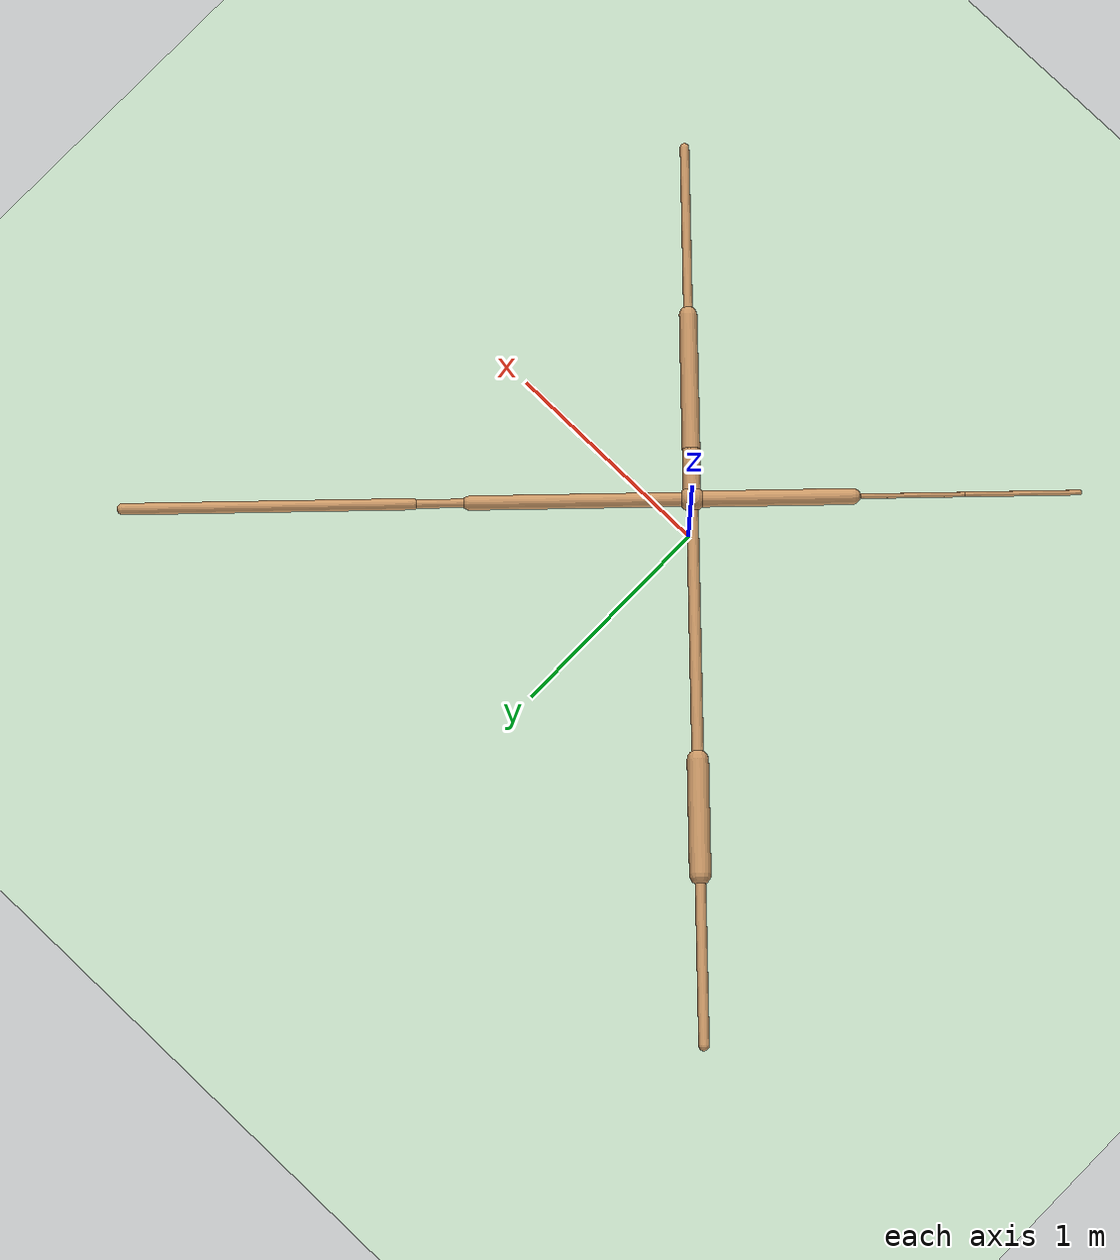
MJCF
<mujoco model="ant">
  <compiler angle="degree" coordinate="local" inertiafromgeom="true" />
  <option integrator="RK4" timestep="0.01" />
  <custom>
    <numeric data="0.0 0.0 0.55 1.0 0.0 0.0 0.0 0.0 1.0 0.0 -1.0 0.0 -1.0 0.0 1.0" name="init_qpos" />
  </custom>
  <default>
    <joint armature="1" damping="1" limited="true" />
    <geom conaffinity="0" condim="3" density="5.0" friction="1 0.5 0.5" margin="0.01" rgba="0.8 0.6 0.4 1" />
  </default>
  <asset>
    <texture builtin="gradient" height="100" rgb1="1 1 1" rgb2="0 0 0" type="skybox" width="100" />
    <texture builtin="flat" height="1278" mark="cross" markrgb="1 1 1" name="texgeom" random="0.01" rgb1="0.8 0.6 0.4" rgb2="0.8 0.6 0.4" type="cube" width="127" />
    <texture builtin="checker" height="100" name="texplane" rgb1="0 0 0" rgb2="0.8 0.8 0.8" type="2d" width="100" />
    <material name="MatPlane" reflectance="0.5" shininess="1" specular="1" texrepeat="60 60" texture="texplane" />
    <material name="geom" texture="texgeom" texuniform="true" />
  </asset>
  <worldbody>
    <light cutoff="100" diffuse="1 1 1" dir="-0 0 -1.3" directional="true" exponent="1" pos="0 0 1.3" specular=".1 .1 .1" />
    <geom conaffinity="1" condim="3" material="MatPlane" name="floor" pos="0 0 0" rgba="0.8 0.9 0.8 1" size="40 40 40" type="plane" />
    <body name="torso" pos="0 0 0.75">
      <camera name="track" mode="trackcom" pos="0 -11 5" xyaxes="1 0 0 0 0.5 1" />
      <geom name="torso_geom" pos="0 0 0" size="0.05596213787794113" type="sphere" />
      <joint armature="0" damping="0" limited="false" margin="0.01" name="root" pos="0 0 0" type="free" />
      <body name="front_left_leg" pos="0 0 0">
        <geom fromto="0 0 0 0.6737385988235474 0.6737385988235474 0" name="aux_1_geom" size="0.030981114134192467" type="capsule" />
        <body name="aux_1" pos="0.6737385988235474 0.6737385988235474 0">
          <joint axis="0 0 1" name="hip_1" pos="0.0 0.0 0.0" range="-30 30" type="hinge" />
          <geom fromto="0 0 0 0.16974657773971558 0.16974657773971558 0" name="left_leg_geom" size="0.018679991364479065" type="capsule" />
          <body name="left_leg_geom_aux" pos="0.16974657773971558 0.16974657773971558 0">
            <joint axis="-1 1 0" name="ankle_1" pos="0.0 0.0 0.0" range="30 70" type="hinge" />
            <geom fromto="0 0 0 0.8771092891693115 0.8771092891693115 0" name="left_ankle_geom" size="0.024553461000323296" type="capsule" />
          </body>
        </body>
      </body>
      <body name="front_right_leg" pos="0 0 0">
        <geom fromto="0 0 0 -0.8007215261459351 0.8007215261459351 0" name="aux_2_geom" size="0.025733670219779015" type="capsule" />
        <body name="aux_2" pos="-0.8007215261459351 0.8007215261459351 0">
          <joint axis="0 0 1" name="hip_2" pos="0.0 0.0 0.0" range="-30 30" type="hinge" />
          <geom fromto="0 0 0 -0.34596458077430725 0.34596458077430725 0" name="right_leg_geom" size="0.046822793781757355" type="capsule" />
          <body name="right_leg_geom_aux" pos="-0.34596458077430725 0.34596458077430725 0">
            <joint axis="1 1 0" name="ankle_2" pos="0.0 0.0 0.0" range="-70 -30" type="hinge" />
            <geom fromto="0 0 0 -0.5127055644989014 0.5127055644989014 0" name="right_ankle_geom" size="0.023059705272316933" type="capsule" />
          </body>
        </body>
      </body>
      <body name="back_leg" pos="0 0 0">
        <geom fromto="0 0 0 -0.48527389764785767 -0.48527389764785767 0" name="aux_3_geom" size="0.03470773249864578" type="capsule" />
        <body name="aux_3" pos="-0.48527389764785767 -0.48527389764785767 0">
          <joint axis="0 0 1" name="hip_3" pos="0.0 0.0 0.0" range="-30 30" type="hinge" />
          <geom fromto="0 0 0 -0.3407505750656128 -0.3407505750656128 0" name="back_leg_geom" size="0.01046302542090416" type="capsule" />
          <body name="back_leg_geom_aux" pos="-0.3407505750656128 -0.3407505750656128 0">
            <joint axis="-1 1 0" name="ankle_3" pos="0.0 0.0 0.0" range="-70 -30" type="hinge" />
            <geom fromto="0 0 0 -0.345126211643219 -0.345126211643219 0" name="third_ankle_geom" size="0.010788265615701675" type="capsule" />
          </body>
        </body>
      </body>
      <body name="right_back_leg" pos="0 0 0">
        <geom fromto="0 0 0 0.15677861869335175 -0.15677861869335175 0" name="aux_4_geom" size="0.038542892783880234" type="capsule" />
        <body name="aux_4" pos="0.15677861869335175 -0.15677861869335175 0">
          <joint axis="0 0 1" name="hip_4" pos="0.0 0.0 0.0" range="-30 30" type="hinge" />
          <geom fromto="0 0 0 0.41726288199424744 -0.41726288199424744 0" name="rightback_leg_geom" size="0.039109498262405396" type="capsule" />
          <body name="rightback_leg_geom_aux" pos="0.41726288199424744 -0.41726288199424744 0">
            <joint axis="1 1 0" name="ankle_4" pos="0.0 0.0 0.0" range="30 70" type="hinge" />
            <geom fromto="0 0 0 0.5283375978469849 -0.5283375978469849 0" name="fourth_ankle_geom" size="0.019802263006567955" type="capsule" />
          </body>
        </body>
      </body>
    </body>
  </worldbody>
  <actuator>
    <motor ctrllimited="true" ctrlrange="-1.0 1.0" joint="hip_4" gear="150" />
    <motor ctrllimited="true" ctrlrange="-1.0 1.0" joint="ankle_4" gear="150" />
    <motor ctrllimited="true" ctrlrange="-1.0 1.0" joint="hip_1" gear="150" />
    <motor ctrllimited="true" ctrlrange="-1.0 1.0" joint="ankle_1" gear="150" />
    <motor ctrllimited="true" ctrlrange="-1.0 1.0" joint="hip_2" gear="150" />
    <motor ctrllimited="true" ctrlrange="-1.0 1.0" joint="ankle_2" gear="150" />
    <motor ctrllimited="true" ctrlrange="-1.0 1.0" joint="hip_3" gear="150" />
    <motor ctrllimited="true" ctrlrange="-1.0 1.0" joint="ankle_3" gear="150" />
  </actuator>
</mujoco>
